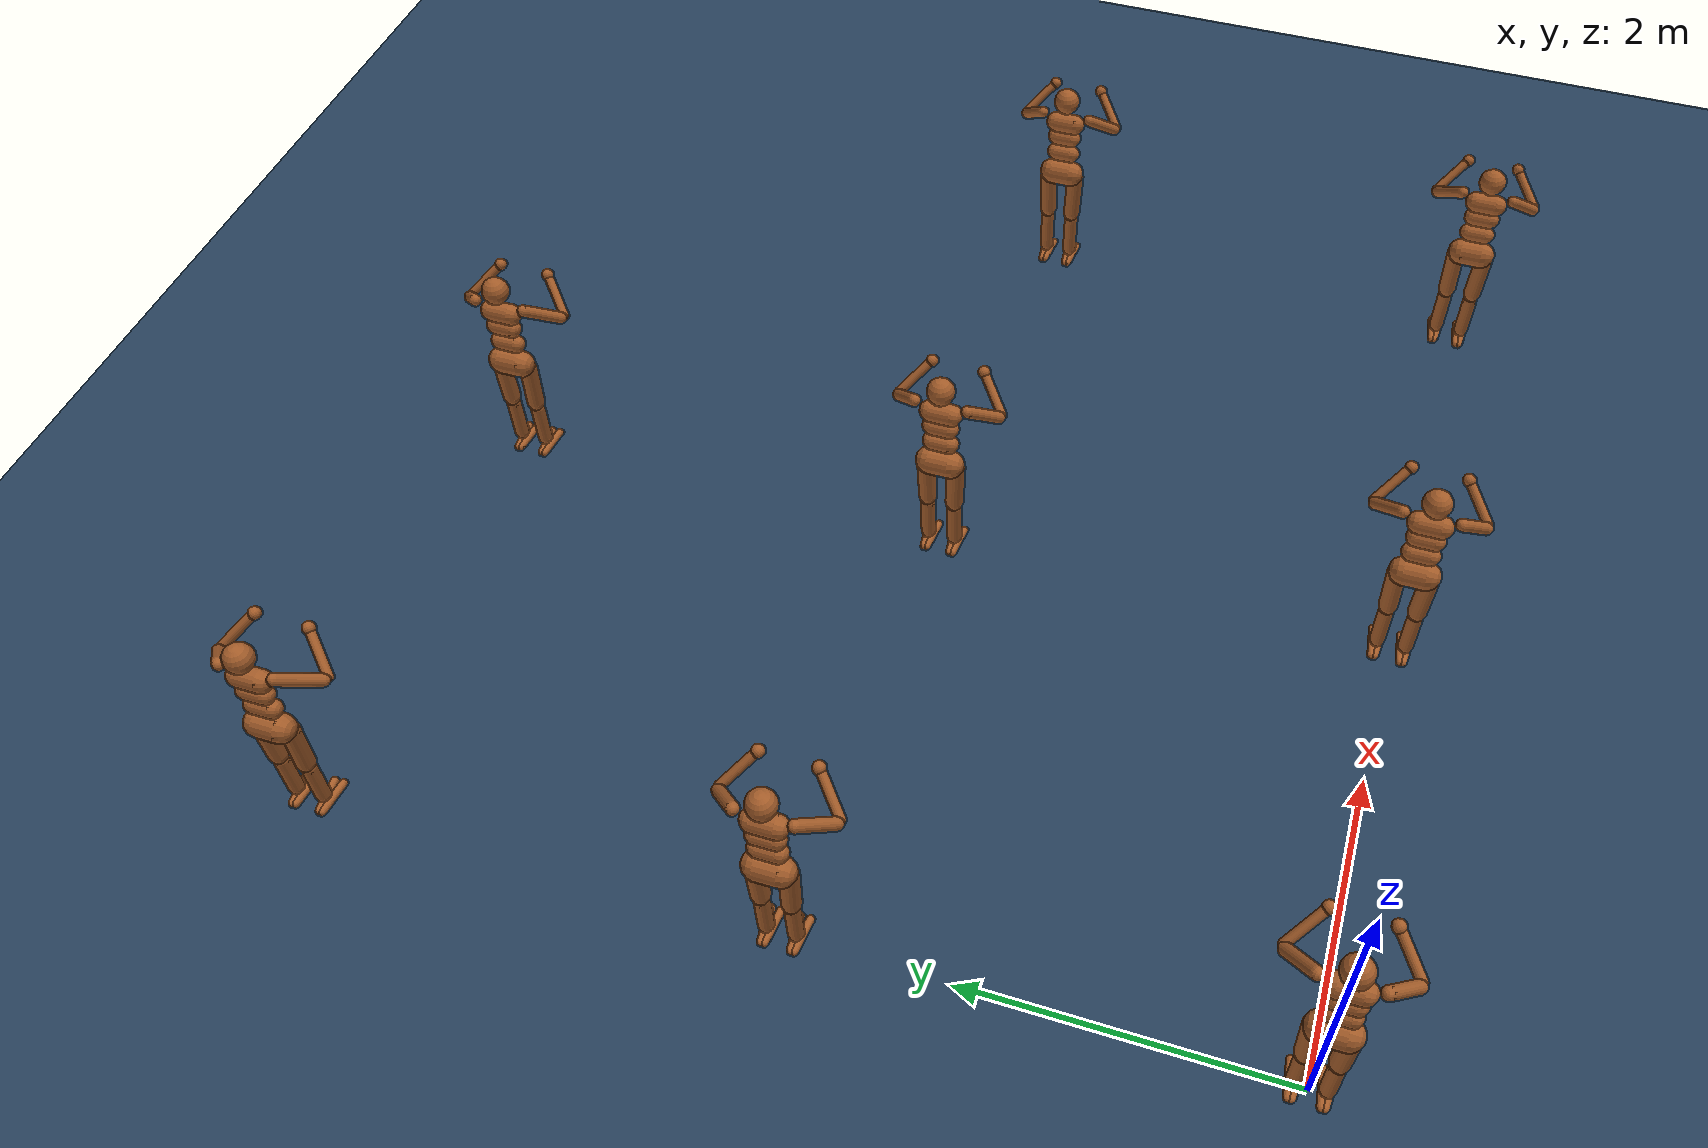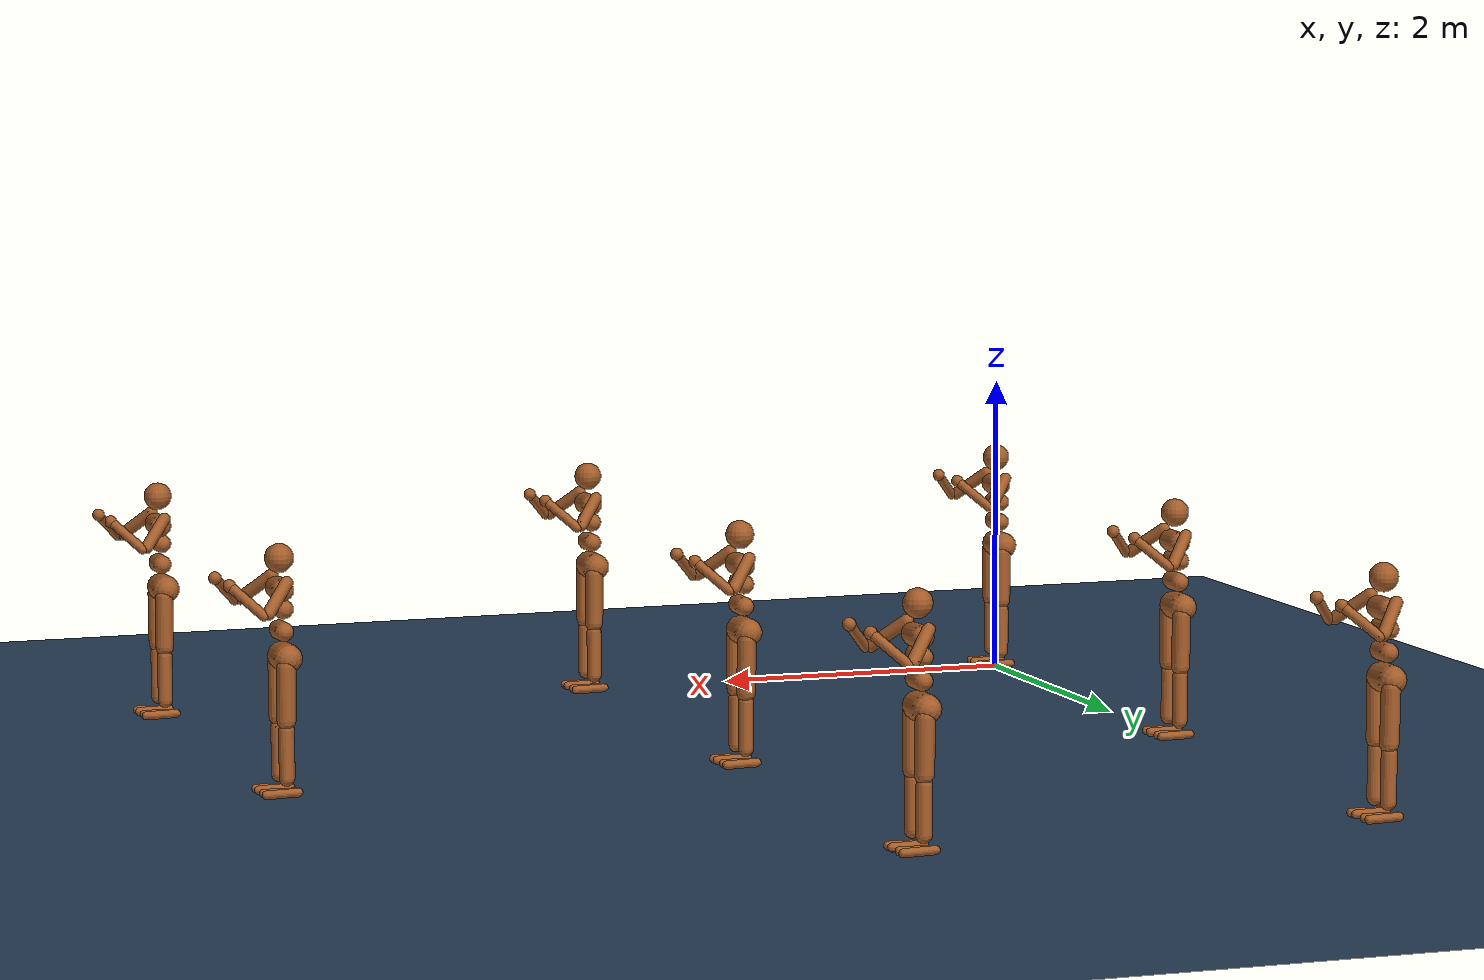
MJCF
<mujoco model="Humanoid">
  <option timestep="0.005" />

  <visual>
    <map force="0.1" zfar="30" />
    <rgba haze="0.15 0.25 0.35 1" />
    <global offwidth="2560" offheight="1440" elevation="-20" azimuth="120" />
  </visual>

  <statistic center="0 0 0.7" />

  <asset>
    <texture type="skybox" builtin="gradient" rgb1=".3 .5 .7" rgb2="0 0 0" width="32" height="512" />
    <texture name="body" type="cube" builtin="flat" mark="cross" width="128" height="128" rgb1="0.8 0.6 0.4" rgb2="0.8 0.6 0.4" markrgb="1 1 1" />
    <material name="body" texture="body" texuniform="true" rgba="0.8 0.6 .4 1" />
    <texture name="grid" type="2d" builtin="checker" width="512" height="512" rgb1=".1 .2 .3" rgb2=".2 .3 .4" />
    <material name="grid" texture="grid" texrepeat="1 1" texuniform="true" reflectance=".2" />
  </asset>

  <default>
    <motor ctrlrange="-1 1" ctrllimited="true" />
    <default class="body">

      <geom type="capsule" condim="1" friction=".7" solimp=".9 .99 .003" solref=".015 1" material="body" group="1" />
      <default class="thigh">
        <geom size=".06" />
      </default>
      <default class="shin">
        <geom fromto="0 0 0 0 0 -.3" size=".049" />
      </default>
      <default class="foot">
        <geom size=".027" />
        <default class="foot1">
          <geom fromto="-.07 -.01 0 .14 -.03 0" />
        </default>
        <default class="foot2">
          <geom fromto="-.07 .01 0 .14  .03 0" />
        </default>
      </default>
      <default class="arm_upper">
        <geom size=".04" />
      </default>
      <default class="arm_lower">
        <geom size=".031" />
      </default>
      <default class="hand">
        <geom type="sphere" size=".04" />
      </default>

      <joint type="hinge" damping=".2" stiffness="1" armature=".01" limited="true" solimplimit="0 .99 .01" />
      <default class="joint_big">
        <joint damping="5" stiffness="10" />
        <default class="hip_x">
          <joint range="-30 10" />
        </default>
        <default class="hip_z">
          <joint range="-60 35" />
        </default>
        <default class="hip_y">
          <joint axis="0 1 0" range="-150 20" />
        </default>
        <default class="joint_big_stiff">
          <joint stiffness="20" />
        </default>
      </default>
      <default class="knee">
        <joint pos="0 0 .02" axis="0 -1 0" range="-160 2" />
      </default>
      <default class="ankle">
        <joint range="-50 50" />
        <default class="ankle_y">
          <joint pos="0 0 .08" axis="0 1 0" stiffness="6" />
        </default>
        <default class="ankle_x">
          <joint pos="0 0 .04" stiffness="3" />
        </default>
      </default>
      <default class="shoulder">
        <joint range="-85 60" />
      </default>
      <default class="elbow">
        <joint range="-100 50" stiffness="0" />
      </default>
    </default>
  </default>

  <worldbody>
    <geom name="floor" size="0 0 .05" type="plane" material="grid" condim="3" />
    <light name="spotlight" mode="targetbodycom" target="torso_0" diffuse=".8 .8 .8" specular="0.3 0.3 0.3" pos="0 -6 4" cutoff="30" />
    <light name="top" pos="0 0 2" mode="trackcom" />
    <body name="torso_0" pos="0.0 0.0 1.282" childclass="body">
      <camera name="back_0" pos="-3 0 1" xyaxes="0 -1 0 1 0 2" mode="trackcom" />
      <camera name="side_0" pos="0 -3 1" xyaxes="1 0 0 0 1 2" mode="trackcom" />
      <freejoint name="root_0" />
      <geom name="torso_0" fromto="0 -.07 0 0 .07 0" size=".07" />
      <geom name="waist_upper_0" fromto="-.01 -.06 -.12 -.01 .06 -.12" size=".06" />
      <body name="head_0" pos="0 0 .19">
        <geom name="head_0" type="sphere" size=".09" />
        <camera name="egocentric_0" pos=".09 0 0" xyaxes="0 -1 0 .1 0 1" fovy="80" />
      </body>
      <body name="waist_lower_0" pos="-.01 0 -.26">
        <geom name="waist_lower_0" fromto="0 -.06 0 0 .06 0" size=".06" />
        <joint name="abdomen_z_0" pos="0 0 .065" axis="0 0 1" range="-45 45" class="joint_big_stiff" />
        <joint name="abdomen_y_0" pos="0 0 .065" axis="0 1 0" range="-75 30" class="joint_big" />
        <body name="pelvis_0" pos="0 0 -.165">
          <joint name="abdomen_x_0" pos="0 0 .1" axis="1 0 0" range="-35 35" class="joint_big" />
          <geom name="butt_0" fromto="-.02 -.07 0 -.02 .07 0" size=".09" />
          <body name="thigh_right_0" pos="0 -.1 -.04">
            <joint name="hip_x_right_0" axis="1 0 0" class="hip_x" />
            <joint name="hip_z_right_0" axis="0 0 1" class="hip_z" />
            <joint name="hip_y_right_0" class="hip_y" />
            <geom name="thigh_right_0" fromto="0 0 0 0 .01 -.34" class="thigh" />
            <body name="shin_right_0" pos="0 .01 -.4">
              <joint name="knee_right_0" class="knee" />
              <geom name="shin_right_0" class="shin" />
              <body name="foot_right_0" pos="0 0 -.39">
                <joint name="ankle_y_right_0" class="ankle_y" />
                <joint name="ankle_x_right_0" class="ankle_x" axis="1 0 .5" />
                <geom name="foot1_right_0" class="foot1" />
                <geom name="foot2_right_0" class="foot2" />
              </body>
            </body>
          </body>
          <body name="thigh_left_0" pos="0 .1 -.04">
            <joint name="hip_x_left_0" axis="-1 0 0" class="hip_x" />
            <joint name="hip_z_left_0" axis="0 0 -1" class="hip_z" />
            <joint name="hip_y_left_0" class="hip_y" />
            <geom name="thigh_left_0" fromto="0 0 0 0 -.01 -.34" class="thigh" />
            <body name="shin_left_0" pos="0 -.01 -.4">
              <joint name="knee_left_0" class="knee" />
              <geom name="shin_left_0" fromto="0 0 0 0 0 -.3" class="shin" />
              <body name="foot_left_0" pos="0 0 -.39">
                <joint name="ankle_y_left_0" class="ankle_y" />
                <joint name="ankle_x_left_0" class="ankle_x" axis="-1 0 -.5" />
                <geom name="foot1_left_0" class="foot1" />
                <geom name="foot2_left_0" class="foot2" />
              </body>
            </body>
          </body>
        </body>
      </body>
      <body name="upper_arm_right_0" pos="0 -.17 .06">
        <joint name="shoulder1_right_0" axis="2 1 1" class="shoulder" />
        <joint name="shoulder2_right_0" axis="0 -1 1" class="shoulder" />
        <geom name="upper_arm_right_0" fromto="0 0 0 .16 -.16 -.16" class="arm_upper" />
        <body name="lower_arm_right_0" pos=".18 -.18 -.18">
          <joint name="elbow_right_0" axis="0 -1 1" class="elbow" />
          <geom name="lower_arm_right_0" fromto=".01 .01 .01 .17 .17 .17" class="arm_lower" />
          <body name="hand_right_0" pos=".18 .18 .18">
            <geom name="hand_right_0" zaxis="1 1 1" class="hand" />
          </body>
        </body>
      </body>
      <body name="upper_arm_left_0" pos="0 .17 .06">
        <joint name="shoulder1_left_0" axis="-2 1 -1" class="shoulder" />
        <joint name="shoulder2_left_0" axis="0 -1 -1" class="shoulder" />
        <geom name="upper_arm_left_0" fromto="0 0 0 .16 .16 -.16" class="arm_upper" />
        <body name="lower_arm_left_0" pos=".18 .18 -.18">
          <joint name="elbow_left_0" axis="0 -1 -1" class="elbow" />
          <geom name="lower_arm_left_0" fromto=".01 -.01 .01 .17 -.17 .17" class="arm_lower" />
          <body name="hand_left_0" pos=".18 -.18 .18">
            <geom name="hand_left_0" zaxis="1 -1 1" class="hand" />
          </body>
        </body>
      </body>
    </body>
  <body name="torso_1" pos="3.0 0.0 1.282" childclass="body">
      <camera name="back_1" pos="-3 0 1" xyaxes="0 -1 0 1 0 2" mode="trackcom" />
      <camera name="side_1" pos="0 -3 1" xyaxes="1 0 0 0 1 2" mode="trackcom" />
      <freejoint name="root_1" />
      <geom name="torso_1" fromto="0 -.07 0 0 .07 0" size=".07" />
      <geom name="waist_upper_1" fromto="-.01 -.06 -.12 -.01 .06 -.12" size=".06" />
      <body name="head_1" pos="0 0 .19">
        <geom name="head_1" type="sphere" size=".09" />
        <camera name="egocentric_1" pos=".09 0 0" xyaxes="0 -1 0 .1 0 1" fovy="80" />
      </body>
      <body name="waist_lower_1" pos="-.01 0 -.26">
        <geom name="waist_lower_1" fromto="0 -.06 0 0 .06 0" size=".06" />
        <joint name="abdomen_z_1" pos="0 0 .065" axis="0 0 1" range="-45 45" class="joint_big_stiff" />
        <joint name="abdomen_y_1" pos="0 0 .065" axis="0 1 0" range="-75 30" class="joint_big" />
        <body name="pelvis_1" pos="0 0 -.165">
          <joint name="abdomen_x_1" pos="0 0 .1" axis="1 0 0" range="-35 35" class="joint_big" />
          <geom name="butt_1" fromto="-.02 -.07 0 -.02 .07 0" size=".09" />
          <body name="thigh_right_1" pos="0 -.1 -.04">
            <joint name="hip_x_right_1" axis="1 0 0" class="hip_x" />
            <joint name="hip_z_right_1" axis="0 0 1" class="hip_z" />
            <joint name="hip_y_right_1" class="hip_y" />
            <geom name="thigh_right_1" fromto="0 0 0 0 .01 -.34" class="thigh" />
            <body name="shin_right_1" pos="0 .01 -.4">
              <joint name="knee_right_1" class="knee" />
              <geom name="shin_right_1" class="shin" />
              <body name="foot_right_1" pos="0 0 -.39">
                <joint name="ankle_y_right_1" class="ankle_y" />
                <joint name="ankle_x_right_1" class="ankle_x" axis="1 0 .5" />
                <geom name="foot1_right_1" class="foot1" />
                <geom name="foot2_right_1" class="foot2" />
              </body>
            </body>
          </body>
          <body name="thigh_left_1" pos="0 .1 -.04">
            <joint name="hip_x_left_1" axis="-1 0 0" class="hip_x" />
            <joint name="hip_z_left_1" axis="0 0 -1" class="hip_z" />
            <joint name="hip_y_left_1" class="hip_y" />
            <geom name="thigh_left_1" fromto="0 0 0 0 -.01 -.34" class="thigh" />
            <body name="shin_left_1" pos="0 -.01 -.4">
              <joint name="knee_left_1" class="knee" />
              <geom name="shin_left_1" fromto="0 0 0 0 0 -.3" class="shin" />
              <body name="foot_left_1" pos="0 0 -.39">
                <joint name="ankle_y_left_1" class="ankle_y" />
                <joint name="ankle_x_left_1" class="ankle_x" axis="-1 0 -.5" />
                <geom name="foot1_left_1" class="foot1" />
                <geom name="foot2_left_1" class="foot2" />
              </body>
            </body>
          </body>
        </body>
      </body>
      <body name="upper_arm_right_1" pos="0 -.17 .06">
        <joint name="shoulder1_right_1" axis="2 1 1" class="shoulder" />
        <joint name="shoulder2_right_1" axis="0 -1 1" class="shoulder" />
        <geom name="upper_arm_right_1" fromto="0 0 0 .16 -.16 -.16" class="arm_upper" />
        <body name="lower_arm_right_1" pos=".18 -.18 -.18">
          <joint name="elbow_right_1" axis="0 -1 1" class="elbow" />
          <geom name="lower_arm_right_1" fromto=".01 .01 .01 .17 .17 .17" class="arm_lower" />
          <body name="hand_right_1" pos=".18 .18 .18">
            <geom name="hand_right_1" zaxis="1 1 1" class="hand" />
          </body>
        </body>
      </body>
      <body name="upper_arm_left_1" pos="0 .17 .06">
        <joint name="shoulder1_left_1" axis="-2 1 -1" class="shoulder" />
        <joint name="shoulder2_left_1" axis="0 -1 -1" class="shoulder" />
        <geom name="upper_arm_left_1" fromto="0 0 0 .16 .16 -.16" class="arm_upper" />
        <body name="lower_arm_left_1" pos=".18 .18 -.18">
          <joint name="elbow_left_1" axis="0 -1 -1" class="elbow" />
          <geom name="lower_arm_left_1" fromto=".01 -.01 .01 .17 -.17 .17" class="arm_lower" />
          <body name="hand_left_1" pos=".18 -.18 .18">
            <geom name="hand_left_1" zaxis="1 -1 1" class="hand" />
          </body>
        </body>
      </body>
    </body>
  <body name="torso_2" pos="6.0 0.0 1.282" childclass="body">
      <camera name="back_2" pos="-3 0 1" xyaxes="0 -1 0 1 0 2" mode="trackcom" />
      <camera name="side_2" pos="0 -3 1" xyaxes="1 0 0 0 1 2" mode="trackcom" />
      <freejoint name="root_2" />
      <geom name="torso_2" fromto="0 -.07 0 0 .07 0" size=".07" />
      <geom name="waist_upper_2" fromto="-.01 -.06 -.12 -.01 .06 -.12" size=".06" />
      <body name="head_2" pos="0 0 .19">
        <geom name="head_2" type="sphere" size=".09" />
        <camera name="egocentric_2" pos=".09 0 0" xyaxes="0 -1 0 .1 0 1" fovy="80" />
      </body>
      <body name="waist_lower_2" pos="-.01 0 -.26">
        <geom name="waist_lower_2" fromto="0 -.06 0 0 .06 0" size=".06" />
        <joint name="abdomen_z_2" pos="0 0 .065" axis="0 0 1" range="-45 45" class="joint_big_stiff" />
        <joint name="abdomen_y_2" pos="0 0 .065" axis="0 1 0" range="-75 30" class="joint_big" />
        <body name="pelvis_2" pos="0 0 -.165">
          <joint name="abdomen_x_2" pos="0 0 .1" axis="1 0 0" range="-35 35" class="joint_big" />
          <geom name="butt_2" fromto="-.02 -.07 0 -.02 .07 0" size=".09" />
          <body name="thigh_right_2" pos="0 -.1 -.04">
            <joint name="hip_x_right_2" axis="1 0 0" class="hip_x" />
            <joint name="hip_z_right_2" axis="0 0 1" class="hip_z" />
            <joint name="hip_y_right_2" class="hip_y" />
            <geom name="thigh_right_2" fromto="0 0 0 0 .01 -.34" class="thigh" />
            <body name="shin_right_2" pos="0 .01 -.4">
              <joint name="knee_right_2" class="knee" />
              <geom name="shin_right_2" class="shin" />
              <body name="foot_right_2" pos="0 0 -.39">
                <joint name="ankle_y_right_2" class="ankle_y" />
                <joint name="ankle_x_right_2" class="ankle_x" axis="1 0 .5" />
                <geom name="foot1_right_2" class="foot1" />
                <geom name="foot2_right_2" class="foot2" />
              </body>
            </body>
          </body>
          <body name="thigh_left_2" pos="0 .1 -.04">
            <joint name="hip_x_left_2" axis="-1 0 0" class="hip_x" />
            <joint name="hip_z_left_2" axis="0 0 -1" class="hip_z" />
            <joint name="hip_y_left_2" class="hip_y" />
            <geom name="thigh_left_2" fromto="0 0 0 0 -.01 -.34" class="thigh" />
            <body name="shin_left_2" pos="0 -.01 -.4">
              <joint name="knee_left_2" class="knee" />
              <geom name="shin_left_2" fromto="0 0 0 0 0 -.3" class="shin" />
              <body name="foot_left_2" pos="0 0 -.39">
                <joint name="ankle_y_left_2" class="ankle_y" />
                <joint name="ankle_x_left_2" class="ankle_x" axis="-1 0 -.5" />
                <geom name="foot1_left_2" class="foot1" />
                <geom name="foot2_left_2" class="foot2" />
              </body>
            </body>
          </body>
        </body>
      </body>
      <body name="upper_arm_right_2" pos="0 -.17 .06">
        <joint name="shoulder1_right_2" axis="2 1 1" class="shoulder" />
        <joint name="shoulder2_right_2" axis="0 -1 1" class="shoulder" />
        <geom name="upper_arm_right_2" fromto="0 0 0 .16 -.16 -.16" class="arm_upper" />
        <body name="lower_arm_right_2" pos=".18 -.18 -.18">
          <joint name="elbow_right_2" axis="0 -1 1" class="elbow" />
          <geom name="lower_arm_right_2" fromto=".01 .01 .01 .17 .17 .17" class="arm_lower" />
          <body name="hand_right_2" pos=".18 .18 .18">
            <geom name="hand_right_2" zaxis="1 1 1" class="hand" />
          </body>
        </body>
      </body>
      <body name="upper_arm_left_2" pos="0 .17 .06">
        <joint name="shoulder1_left_2" axis="-2 1 -1" class="shoulder" />
        <joint name="shoulder2_left_2" axis="0 -1 -1" class="shoulder" />
        <geom name="upper_arm_left_2" fromto="0 0 0 .16 .16 -.16" class="arm_upper" />
        <body name="lower_arm_left_2" pos=".18 .18 -.18">
          <joint name="elbow_left_2" axis="0 -1 -1" class="elbow" />
          <geom name="lower_arm_left_2" fromto=".01 -.01 .01 .17 -.17 .17" class="arm_lower" />
          <body name="hand_left_2" pos=".18 -.18 .18">
            <geom name="hand_left_2" zaxis="1 -1 1" class="hand" />
          </body>
        </body>
      </body>
    </body>
  <body name="torso_3" pos="0.0 3.0 1.282" childclass="body">
      <camera name="back_3" pos="-3 0 1" xyaxes="0 -1 0 1 0 2" mode="trackcom" />
      <camera name="side_3" pos="0 -3 1" xyaxes="1 0 0 0 1 2" mode="trackcom" />
      <freejoint name="root_3" />
      <geom name="torso_3" fromto="0 -.07 0 0 .07 0" size=".07" />
      <geom name="waist_upper_3" fromto="-.01 -.06 -.12 -.01 .06 -.12" size=".06" />
      <body name="head_3" pos="0 0 .19">
        <geom name="head_3" type="sphere" size=".09" />
        <camera name="egocentric_3" pos=".09 0 0" xyaxes="0 -1 0 .1 0 1" fovy="80" />
      </body>
      <body name="waist_lower_3" pos="-.01 0 -.26">
        <geom name="waist_lower_3" fromto="0 -.06 0 0 .06 0" size=".06" />
        <joint name="abdomen_z_3" pos="0 0 .065" axis="0 0 1" range="-45 45" class="joint_big_stiff" />
        <joint name="abdomen_y_3" pos="0 0 .065" axis="0 1 0" range="-75 30" class="joint_big" />
        <body name="pelvis_3" pos="0 0 -.165">
          <joint name="abdomen_x_3" pos="0 0 .1" axis="1 0 0" range="-35 35" class="joint_big" />
          <geom name="butt_3" fromto="-.02 -.07 0 -.02 .07 0" size=".09" />
          <body name="thigh_right_3" pos="0 -.1 -.04">
            <joint name="hip_x_right_3" axis="1 0 0" class="hip_x" />
            <joint name="hip_z_right_3" axis="0 0 1" class="hip_z" />
            <joint name="hip_y_right_3" class="hip_y" />
            <geom name="thigh_right_3" fromto="0 0 0 0 .01 -.34" class="thigh" />
            <body name="shin_right_3" pos="0 .01 -.4">
              <joint name="knee_right_3" class="knee" />
              <geom name="shin_right_3" class="shin" />
              <body name="foot_right_3" pos="0 0 -.39">
                <joint name="ankle_y_right_3" class="ankle_y" />
                <joint name="ankle_x_right_3" class="ankle_x" axis="1 0 .5" />
                <geom name="foot1_right_3" class="foot1" />
                <geom name="foot2_right_3" class="foot2" />
              </body>
            </body>
          </body>
          <body name="thigh_left_3" pos="0 .1 -.04">
            <joint name="hip_x_left_3" axis="-1 0 0" class="hip_x" />
            <joint name="hip_z_left_3" axis="0 0 -1" class="hip_z" />
            <joint name="hip_y_left_3" class="hip_y" />
            <geom name="thigh_left_3" fromto="0 0 0 0 -.01 -.34" class="thigh" />
            <body name="shin_left_3" pos="0 -.01 -.4">
              <joint name="knee_left_3" class="knee" />
              <geom name="shin_left_3" fromto="0 0 0 0 0 -.3" class="shin" />
              <body name="foot_left_3" pos="0 0 -.39">
                <joint name="ankle_y_left_3" class="ankle_y" />
                <joint name="ankle_x_left_3" class="ankle_x" axis="-1 0 -.5" />
                <geom name="foot1_left_3" class="foot1" />
                <geom name="foot2_left_3" class="foot2" />
              </body>
            </body>
          </body>
        </body>
      </body>
      <body name="upper_arm_right_3" pos="0 -.17 .06">
        <joint name="shoulder1_right_3" axis="2 1 1" class="shoulder" />
        <joint name="shoulder2_right_3" axis="0 -1 1" class="shoulder" />
        <geom name="upper_arm_right_3" fromto="0 0 0 .16 -.16 -.16" class="arm_upper" />
        <body name="lower_arm_right_3" pos=".18 -.18 -.18">
          <joint name="elbow_right_3" axis="0 -1 1" class="elbow" />
          <geom name="lower_arm_right_3" fromto=".01 .01 .01 .17 .17 .17" class="arm_lower" />
          <body name="hand_right_3" pos=".18 .18 .18">
            <geom name="hand_right_3" zaxis="1 1 1" class="hand" />
          </body>
        </body>
      </body>
      <body name="upper_arm_left_3" pos="0 .17 .06">
        <joint name="shoulder1_left_3" axis="-2 1 -1" class="shoulder" />
        <joint name="shoulder2_left_3" axis="0 -1 -1" class="shoulder" />
        <geom name="upper_arm_left_3" fromto="0 0 0 .16 .16 -.16" class="arm_upper" />
        <body name="lower_arm_left_3" pos=".18 .18 -.18">
          <joint name="elbow_left_3" axis="0 -1 -1" class="elbow" />
          <geom name="lower_arm_left_3" fromto=".01 -.01 .01 .17 -.17 .17" class="arm_lower" />
          <body name="hand_left_3" pos=".18 -.18 .18">
            <geom name="hand_left_3" zaxis="1 -1 1" class="hand" />
          </body>
        </body>
      </body>
    </body>
  <body name="torso_4" pos="3.0 3.0 1.282" childclass="body">
      <camera name="back_4" pos="-3 0 1" xyaxes="0 -1 0 1 0 2" mode="trackcom" />
      <camera name="side_4" pos="0 -3 1" xyaxes="1 0 0 0 1 2" mode="trackcom" />
      <freejoint name="root_4" />
      <geom name="torso_4" fromto="0 -.07 0 0 .07 0" size=".07" />
      <geom name="waist_upper_4" fromto="-.01 -.06 -.12 -.01 .06 -.12" size=".06" />
      <body name="head_4" pos="0 0 .19">
        <geom name="head_4" type="sphere" size=".09" />
        <camera name="egocentric_4" pos=".09 0 0" xyaxes="0 -1 0 .1 0 1" fovy="80" />
      </body>
      <body name="waist_lower_4" pos="-.01 0 -.26">
        <geom name="waist_lower_4" fromto="0 -.06 0 0 .06 0" size=".06" />
        <joint name="abdomen_z_4" pos="0 0 .065" axis="0 0 1" range="-45 45" class="joint_big_stiff" />
        <joint name="abdomen_y_4" pos="0 0 .065" axis="0 1 0" range="-75 30" class="joint_big" />
        <body name="pelvis_4" pos="0 0 -.165">
          <joint name="abdomen_x_4" pos="0 0 .1" axis="1 0 0" range="-35 35" class="joint_big" />
          <geom name="butt_4" fromto="-.02 -.07 0 -.02 .07 0" size=".09" />
          <body name="thigh_right_4" pos="0 -.1 -.04">
            <joint name="hip_x_right_4" axis="1 0 0" class="hip_x" />
            <joint name="hip_z_right_4" axis="0 0 1" class="hip_z" />
            <joint name="hip_y_right_4" class="hip_y" />
            <geom name="thigh_right_4" fromto="0 0 0 0 .01 -.34" class="thigh" />
            <body name="shin_right_4" pos="0 .01 -.4">
              <joint name="knee_right_4" class="knee" />
              <geom name="shin_right_4" class="shin" />
              <body name="foot_right_4" pos="0 0 -.39">
                <joint name="ankle_y_right_4" class="ankle_y" />
                <joint name="ankle_x_right_4" class="ankle_x" axis="1 0 .5" />
                <geom name="foot1_right_4" class="foot1" />
                <geom name="foot2_right_4" class="foot2" />
              </body>
            </body>
          </body>
          <body name="thigh_left_4" pos="0 .1 -.04">
            <joint name="hip_x_left_4" axis="-1 0 0" class="hip_x" />
            <joint name="hip_z_left_4" axis="0 0 -1" class="hip_z" />
            <joint name="hip_y_left_4" class="hip_y" />
            <geom name="thigh_left_4" fromto="0 0 0 0 -.01 -.34" class="thigh" />
            <body name="shin_left_4" pos="0 -.01 -.4">
              <joint name="knee_left_4" class="knee" />
              <geom name="shin_left_4" fromto="0 0 0 0 0 -.3" class="shin" />
              <body name="foot_left_4" pos="0 0 -.39">
                <joint name="ankle_y_left_4" class="ankle_y" />
                <joint name="ankle_x_left_4" class="ankle_x" axis="-1 0 -.5" />
                <geom name="foot1_left_4" class="foot1" />
                <geom name="foot2_left_4" class="foot2" />
              </body>
            </body>
          </body>
        </body>
      </body>
      <body name="upper_arm_right_4" pos="0 -.17 .06">
        <joint name="shoulder1_right_4" axis="2 1 1" class="shoulder" />
        <joint name="shoulder2_right_4" axis="0 -1 1" class="shoulder" />
        <geom name="upper_arm_right_4" fromto="0 0 0 .16 -.16 -.16" class="arm_upper" />
        <body name="lower_arm_right_4" pos=".18 -.18 -.18">
          <joint name="elbow_right_4" axis="0 -1 1" class="elbow" />
          <geom name="lower_arm_right_4" fromto=".01 .01 .01 .17 .17 .17" class="arm_lower" />
          <body name="hand_right_4" pos=".18 .18 .18">
            <geom name="hand_right_4" zaxis="1 1 1" class="hand" />
          </body>
        </body>
      </body>
      <body name="upper_arm_left_4" pos="0 .17 .06">
        <joint name="shoulder1_left_4" axis="-2 1 -1" class="shoulder" />
        <joint name="shoulder2_left_4" axis="0 -1 -1" class="shoulder" />
        <geom name="upper_arm_left_4" fromto="0 0 0 .16 .16 -.16" class="arm_upper" />
        <body name="lower_arm_left_4" pos=".18 .18 -.18">
          <joint name="elbow_left_4" axis="0 -1 -1" class="elbow" />
          <geom name="lower_arm_left_4" fromto=".01 -.01 .01 .17 -.17 .17" class="arm_lower" />
          <body name="hand_left_4" pos=".18 -.18 .18">
            <geom name="hand_left_4" zaxis="1 -1 1" class="hand" />
          </body>
        </body>
      </body>
    </body>
  <body name="torso_5" pos="6.0 3.0 1.282" childclass="body">
      <camera name="back_5" pos="-3 0 1" xyaxes="0 -1 0 1 0 2" mode="trackcom" />
      <camera name="side_5" pos="0 -3 1" xyaxes="1 0 0 0 1 2" mode="trackcom" />
      <freejoint name="root_5" />
      <geom name="torso_5" fromto="0 -.07 0 0 .07 0" size=".07" />
      <geom name="waist_upper_5" fromto="-.01 -.06 -.12 -.01 .06 -.12" size=".06" />
      <body name="head_5" pos="0 0 .19">
        <geom name="head_5" type="sphere" size=".09" />
        <camera name="egocentric_5" pos=".09 0 0" xyaxes="0 -1 0 .1 0 1" fovy="80" />
      </body>
      <body name="waist_lower_5" pos="-.01 0 -.26">
        <geom name="waist_lower_5" fromto="0 -.06 0 0 .06 0" size=".06" />
        <joint name="abdomen_z_5" pos="0 0 .065" axis="0 0 1" range="-45 45" class="joint_big_stiff" />
        <joint name="abdomen_y_5" pos="0 0 .065" axis="0 1 0" range="-75 30" class="joint_big" />
        <body name="pelvis_5" pos="0 0 -.165">
          <joint name="abdomen_x_5" pos="0 0 .1" axis="1 0 0" range="-35 35" class="joint_big" />
          <geom name="butt_5" fromto="-.02 -.07 0 -.02 .07 0" size=".09" />
          <body name="thigh_right_5" pos="0 -.1 -.04">
            <joint name="hip_x_right_5" axis="1 0 0" class="hip_x" />
            <joint name="hip_z_right_5" axis="0 0 1" class="hip_z" />
            <joint name="hip_y_right_5" class="hip_y" />
            <geom name="thigh_right_5" fromto="0 0 0 0 .01 -.34" class="thigh" />
            <body name="shin_right_5" pos="0 .01 -.4">
              <joint name="knee_right_5" class="knee" />
              <geom name="shin_right_5" class="shin" />
              <body name="foot_right_5" pos="0 0 -.39">
                <joint name="ankle_y_right_5" class="ankle_y" />
                <joint name="ankle_x_right_5" class="ankle_x" axis="1 0 .5" />
                <geom name="foot1_right_5" class="foot1" />
                <geom name="foot2_right_5" class="foot2" />
              </body>
            </body>
          </body>
          <body name="thigh_left_5" pos="0 .1 -.04">
            <joint name="hip_x_left_5" axis="-1 0 0" class="hip_x" />
            <joint name="hip_z_left_5" axis="0 0 -1" class="hip_z" />
            <joint name="hip_y_left_5" class="hip_y" />
            <geom name="thigh_left_5" fromto="0 0 0 0 -.01 -.34" class="thigh" />
            <body name="shin_left_5" pos="0 -.01 -.4">
              <joint name="knee_left_5" class="knee" />
              <geom name="shin_left_5" fromto="0 0 0 0 0 -.3" class="shin" />
              <body name="foot_left_5" pos="0 0 -.39">
                <joint name="ankle_y_left_5" class="ankle_y" />
                <joint name="ankle_x_left_5" class="ankle_x" axis="-1 0 -.5" />
                <geom name="foot1_left_5" class="foot1" />
                <geom name="foot2_left_5" class="foot2" />
              </body>
            </body>
          </body>
        </body>
      </body>
      <body name="upper_arm_right_5" pos="0 -.17 .06">
        <joint name="shoulder1_right_5" axis="2 1 1" class="shoulder" />
        <joint name="shoulder2_right_5" axis="0 -1 1" class="shoulder" />
        <geom name="upper_arm_right_5" fromto="0 0 0 .16 -.16 -.16" class="arm_upper" />
        <body name="lower_arm_right_5" pos=".18 -.18 -.18">
          <joint name="elbow_right_5" axis="0 -1 1" class="elbow" />
          <geom name="lower_arm_right_5" fromto=".01 .01 .01 .17 .17 .17" class="arm_lower" />
          <body name="hand_right_5" pos=".18 .18 .18">
            <geom name="hand_right_5" zaxis="1 1 1" class="hand" />
          </body>
        </body>
      </body>
      <body name="upper_arm_left_5" pos="0 .17 .06">
        <joint name="shoulder1_left_5" axis="-2 1 -1" class="shoulder" />
        <joint name="shoulder2_left_5" axis="0 -1 -1" class="shoulder" />
        <geom name="upper_arm_left_5" fromto="0 0 0 .16 .16 -.16" class="arm_upper" />
        <body name="lower_arm_left_5" pos=".18 .18 -.18">
          <joint name="elbow_left_5" axis="0 -1 -1" class="elbow" />
          <geom name="lower_arm_left_5" fromto=".01 -.01 .01 .17 -.17 .17" class="arm_lower" />
          <body name="hand_left_5" pos=".18 -.18 .18">
            <geom name="hand_left_5" zaxis="1 -1 1" class="hand" />
          </body>
        </body>
      </body>
    </body>
  <body name="torso_6" pos="0.0 6.0 1.282" childclass="body">
      <camera name="back_6" pos="-3 0 1" xyaxes="0 -1 0 1 0 2" mode="trackcom" />
      <camera name="side_6" pos="0 -3 1" xyaxes="1 0 0 0 1 2" mode="trackcom" />
      <freejoint name="root_6" />
      <geom name="torso_6" fromto="0 -.07 0 0 .07 0" size=".07" />
      <geom name="waist_upper_6" fromto="-.01 -.06 -.12 -.01 .06 -.12" size=".06" />
      <body name="head_6" pos="0 0 .19">
        <geom name="head_6" type="sphere" size=".09" />
        <camera name="egocentric_6" pos=".09 0 0" xyaxes="0 -1 0 .1 0 1" fovy="80" />
      </body>
      <body name="waist_lower_6" pos="-.01 0 -.26">
        <geom name="waist_lower_6" fromto="0 -.06 0 0 .06 0" size=".06" />
        <joint name="abdomen_z_6" pos="0 0 .065" axis="0 0 1" range="-45 45" class="joint_big_stiff" />
        <joint name="abdomen_y_6" pos="0 0 .065" axis="0 1 0" range="-75 30" class="joint_big" />
        <body name="pelvis_6" pos="0 0 -.165">
          <joint name="abdomen_x_6" pos="0 0 .1" axis="1 0 0" range="-35 35" class="joint_big" />
          <geom name="butt_6" fromto="-.02 -.07 0 -.02 .07 0" size=".09" />
          <body name="thigh_right_6" pos="0 -.1 -.04">
            <joint name="hip_x_right_6" axis="1 0 0" class="hip_x" />
            <joint name="hip_z_right_6" axis="0 0 1" class="hip_z" />
            <joint name="hip_y_right_6" class="hip_y" />
            <geom name="thigh_right_6" fromto="0 0 0 0 .01 -.34" class="thigh" />
            <body name="shin_right_6" pos="0 .01 -.4">
              <joint name="knee_right_6" class="knee" />
              <geom name="shin_right_6" class="shin" />
              <body name="foot_right_6" pos="0 0 -.39">
                <joint name="ankle_y_right_6" class="ankle_y" />
                <joint name="ankle_x_right_6" class="ankle_x" axis="1 0 .5" />
                <geom name="foot1_right_6" class="foot1" />
                <geom name="foot2_right_6" class="foot2" />
              </body>
            </body>
          </body>
          <body name="thigh_left_6" pos="0 .1 -.04">
            <joint name="hip_x_left_6" axis="-1 0 0" class="hip_x" />
            <joint name="hip_z_left_6" axis="0 0 -1" class="hip_z" />
            <joint name="hip_y_left_6" class="hip_y" />
            <geom name="thigh_left_6" fromto="0 0 0 0 -.01 -.34" class="thigh" />
            <body name="shin_left_6" pos="0 -.01 -.4">
              <joint name="knee_left_6" class="knee" />
              <geom name="shin_left_6" fromto="0 0 0 0 0 -.3" class="shin" />
              <body name="foot_left_6" pos="0 0 -.39">
                <joint name="ankle_y_left_6" class="ankle_y" />
                <joint name="ankle_x_left_6" class="ankle_x" axis="-1 0 -.5" />
                <geom name="foot1_left_6" class="foot1" />
                <geom name="foot2_left_6" class="foot2" />
              </body>
            </body>
          </body>
        </body>
      </body>
      <body name="upper_arm_right_6" pos="0 -.17 .06">
        <joint name="shoulder1_right_6" axis="2 1 1" class="shoulder" />
        <joint name="shoulder2_right_6" axis="0 -1 1" class="shoulder" />
        <geom name="upper_arm_right_6" fromto="0 0 0 .16 -.16 -.16" class="arm_upper" />
        <body name="lower_arm_right_6" pos=".18 -.18 -.18">
          <joint name="elbow_right_6" axis="0 -1 1" class="elbow" />
          <geom name="lower_arm_right_6" fromto=".01 .01 .01 .17 .17 .17" class="arm_lower" />
          <body name="hand_right_6" pos=".18 .18 .18">
            <geom name="hand_right_6" zaxis="1 1 1" class="hand" />
          </body>
        </body>
      </body>
      <body name="upper_arm_left_6" pos="0 .17 .06">
        <joint name="shoulder1_left_6" axis="-2 1 -1" class="shoulder" />
        <joint name="shoulder2_left_6" axis="0 -1 -1" class="shoulder" />
        <geom name="upper_arm_left_6" fromto="0 0 0 .16 .16 -.16" class="arm_upper" />
        <body name="lower_arm_left_6" pos=".18 .18 -.18">
          <joint name="elbow_left_6" axis="0 -1 -1" class="elbow" />
          <geom name="lower_arm_left_6" fromto=".01 -.01 .01 .17 -.17 .17" class="arm_lower" />
          <body name="hand_left_6" pos=".18 -.18 .18">
            <geom name="hand_left_6" zaxis="1 -1 1" class="hand" />
          </body>
        </body>
      </body>
    </body>
  <body name="torso_7" pos="3.0 6.0 1.282" childclass="body">
      <camera name="back_7" pos="-3 0 1" xyaxes="0 -1 0 1 0 2" mode="trackcom" />
      <camera name="side_7" pos="0 -3 1" xyaxes="1 0 0 0 1 2" mode="trackcom" />
      <freejoint name="root_7" />
      <geom name="torso_7" fromto="0 -.07 0 0 .07 0" size=".07" />
      <geom name="waist_upper_7" fromto="-.01 -.06 -.12 -.01 .06 -.12" size=".06" />
      <body name="head_7" pos="0 0 .19">
        <geom name="head_7" type="sphere" size=".09" />
        <camera name="egocentric_7" pos=".09 0 0" xyaxes="0 -1 0 .1 0 1" fovy="80" />
      </body>
      <body name="waist_lower_7" pos="-.01 0 -.26">
        <geom name="waist_lower_7" fromto="0 -.06 0 0 .06 0" size=".06" />
        <joint name="abdomen_z_7" pos="0 0 .065" axis="0 0 1" range="-45 45" class="joint_big_stiff" />
        <joint name="abdomen_y_7" pos="0 0 .065" axis="0 1 0" range="-75 30" class="joint_big" />
        <body name="pelvis_7" pos="0 0 -.165">
          <joint name="abdomen_x_7" pos="0 0 .1" axis="1 0 0" range="-35 35" class="joint_big" />
          <geom name="butt_7" fromto="-.02 -.07 0 -.02 .07 0" size=".09" />
          <body name="thigh_right_7" pos="0 -.1 -.04">
            <joint name="hip_x_right_7" axis="1 0 0" class="hip_x" />
            <joint name="hip_z_right_7" axis="0 0 1" class="hip_z" />
            <joint name="hip_y_right_7" class="hip_y" />
            <geom name="thigh_right_7" fromto="0 0 0 0 .01 -.34" class="thigh" />
            <body name="shin_right_7" pos="0 .01 -.4">
              <joint name="knee_right_7" class="knee" />
              <geom name="shin_right_7" class="shin" />
              <body name="foot_right_7" pos="0 0 -.39">
                <joint name="ankle_y_right_7" class="ankle_y" />
                <joint name="ankle_x_right_7" class="ankle_x" axis="1 0 .5" />
                <geom name="foot1_right_7" class="foot1" />
                <geom name="foot2_right_7" class="foot2" />
              </body>
            </body>
          </body>
          <body name="thigh_left_7" pos="0 .1 -.04">
            <joint name="hip_x_left_7" axis="-1 0 0" class="hip_x" />
            <joint name="hip_z_left_7" axis="0 0 -1" class="hip_z" />
            <joint name="hip_y_left_7" class="hip_y" />
            <geom name="thigh_left_7" fromto="0 0 0 0 -.01 -.34" class="thigh" />
            <body name="shin_left_7" pos="0 -.01 -.4">
              <joint name="knee_left_7" class="knee" />
              <geom name="shin_left_7" fromto="0 0 0 0 0 -.3" class="shin" />
              <body name="foot_left_7" pos="0 0 -.39">
                <joint name="ankle_y_left_7" class="ankle_y" />
                <joint name="ankle_x_left_7" class="ankle_x" axis="-1 0 -.5" />
                <geom name="foot1_left_7" class="foot1" />
                <geom name="foot2_left_7" class="foot2" />
              </body>
            </body>
          </body>
        </body>
      </body>
      <body name="upper_arm_right_7" pos="0 -.17 .06">
        <joint name="shoulder1_right_7" axis="2 1 1" class="shoulder" />
        <joint name="shoulder2_right_7" axis="0 -1 1" class="shoulder" />
        <geom name="upper_arm_right_7" fromto="0 0 0 .16 -.16 -.16" class="arm_upper" />
        <body name="lower_arm_right_7" pos=".18 -.18 -.18">
          <joint name="elbow_right_7" axis="0 -1 1" class="elbow" />
          <geom name="lower_arm_right_7" fromto=".01 .01 .01 .17 .17 .17" class="arm_lower" />
          <body name="hand_right_7" pos=".18 .18 .18">
            <geom name="hand_right_7" zaxis="1 1 1" class="hand" />
          </body>
        </body>
      </body>
      <body name="upper_arm_left_7" pos="0 .17 .06">
        <joint name="shoulder1_left_7" axis="-2 1 -1" class="shoulder" />
        <joint name="shoulder2_left_7" axis="0 -1 -1" class="shoulder" />
        <geom name="upper_arm_left_7" fromto="0 0 0 .16 .16 -.16" class="arm_upper" />
        <body name="lower_arm_left_7" pos=".18 .18 -.18">
          <joint name="elbow_left_7" axis="0 -1 -1" class="elbow" />
          <geom name="lower_arm_left_7" fromto=".01 -.01 .01 .17 -.17 .17" class="arm_lower" />
          <body name="hand_left_7" pos=".18 -.18 .18">
            <geom name="hand_left_7" zaxis="1 -1 1" class="hand" />
          </body>
        </body>
      </body>
    </body>
  </worldbody>

  <contact>
    <exclude body1="waist_lower_0" body2="thigh_right_0" />
    <exclude body1="waist_lower_0" body2="thigh_left_0" />
  <exclude body1="waist_lower_1" body2="thigh_right_1" />
    <exclude body1="waist_lower_1" body2="thigh_left_1" />
  <exclude body1="waist_lower_2" body2="thigh_right_2" />
    <exclude body1="waist_lower_2" body2="thigh_left_2" />
  <exclude body1="waist_lower_3" body2="thigh_right_3" />
    <exclude body1="waist_lower_3" body2="thigh_left_3" />
  <exclude body1="waist_lower_4" body2="thigh_right_4" />
    <exclude body1="waist_lower_4" body2="thigh_left_4" />
  <exclude body1="waist_lower_5" body2="thigh_right_5" />
    <exclude body1="waist_lower_5" body2="thigh_left_5" />
  <exclude body1="waist_lower_6" body2="thigh_right_6" />
    <exclude body1="waist_lower_6" body2="thigh_left_6" />
  <exclude body1="waist_lower_7" body2="thigh_right_7" />
    <exclude body1="waist_lower_7" body2="thigh_left_7" />
  </contact>

  <tendon>
    <fixed name="hamstring_right_0" limited="true" range="-0.3 2">
      <joint joint="hip_y_right_0" coef=".5" />
      <joint joint="knee_right_0" coef="-.5" />
    </fixed>
    <fixed name="hamstring_left_0" limited="true" range="-0.3 2">
      <joint joint="hip_y_left_0" coef=".5" />
      <joint joint="knee_left_0" coef="-.5" />
    </fixed>
  <fixed name="hamstring_right_1" limited="true" range="-0.3 2">
      <joint joint="hip_y_right_1" coef=".5" />
      <joint joint="knee_right_1" coef="-.5" />
    </fixed>
    <fixed name="hamstring_left_1" limited="true" range="-0.3 2">
      <joint joint="hip_y_left_1" coef=".5" />
      <joint joint="knee_left_1" coef="-.5" />
    </fixed>
  <fixed name="hamstring_right_2" limited="true" range="-0.3 2">
      <joint joint="hip_y_right_2" coef=".5" />
      <joint joint="knee_right_2" coef="-.5" />
    </fixed>
    <fixed name="hamstring_left_2" limited="true" range="-0.3 2">
      <joint joint="hip_y_left_2" coef=".5" />
      <joint joint="knee_left_2" coef="-.5" />
    </fixed>
  <fixed name="hamstring_right_3" limited="true" range="-0.3 2">
      <joint joint="hip_y_right_3" coef=".5" />
      <joint joint="knee_right_3" coef="-.5" />
    </fixed>
    <fixed name="hamstring_left_3" limited="true" range="-0.3 2">
      <joint joint="hip_y_left_3" coef=".5" />
      <joint joint="knee_left_3" coef="-.5" />
    </fixed>
  <fixed name="hamstring_right_4" limited="true" range="-0.3 2">
      <joint joint="hip_y_right_4" coef=".5" />
      <joint joint="knee_right_4" coef="-.5" />
    </fixed>
    <fixed name="hamstring_left_4" limited="true" range="-0.3 2">
      <joint joint="hip_y_left_4" coef=".5" />
      <joint joint="knee_left_4" coef="-.5" />
    </fixed>
  <fixed name="hamstring_right_5" limited="true" range="-0.3 2">
      <joint joint="hip_y_right_5" coef=".5" />
      <joint joint="knee_right_5" coef="-.5" />
    </fixed>
    <fixed name="hamstring_left_5" limited="true" range="-0.3 2">
      <joint joint="hip_y_left_5" coef=".5" />
      <joint joint="knee_left_5" coef="-.5" />
    </fixed>
  <fixed name="hamstring_right_6" limited="true" range="-0.3 2">
      <joint joint="hip_y_right_6" coef=".5" />
      <joint joint="knee_right_6" coef="-.5" />
    </fixed>
    <fixed name="hamstring_left_6" limited="true" range="-0.3 2">
      <joint joint="hip_y_left_6" coef=".5" />
      <joint joint="knee_left_6" coef="-.5" />
    </fixed>
  <fixed name="hamstring_right_7" limited="true" range="-0.3 2">
      <joint joint="hip_y_right_7" coef=".5" />
      <joint joint="knee_right_7" coef="-.5" />
    </fixed>
    <fixed name="hamstring_left_7" limited="true" range="-0.3 2">
      <joint joint="hip_y_left_7" coef=".5" />
      <joint joint="knee_left_7" coef="-.5" />
    </fixed>
  </tendon>

  <actuator>
    <motor name="abdomen_z_0" gear="40" joint="abdomen_z_0" />
    <motor name="abdomen_y_0" gear="40" joint="abdomen_y_0" />
    <motor name="abdomen_x_0" gear="40" joint="abdomen_x_0" />
    <motor name="hip_x_right_0" gear="40" joint="hip_x_right_0" />
    <motor name="hip_z_right_0" gear="40" joint="hip_z_right_0" />
    <motor name="hip_y_right_0" gear="120" joint="hip_y_right_0" />
    <motor name="knee_right_0" gear="80" joint="knee_right_0" />
    <motor name="ankle_y_right_0" gear="20" joint="ankle_y_right_0" />
    <motor name="ankle_x_right_0" gear="20" joint="ankle_x_right_0" />
    <motor name="hip_x_left_0" gear="40" joint="hip_x_left_0" />
    <motor name="hip_z_left_0" gear="40" joint="hip_z_left_0" />
    <motor name="hip_y_left_0" gear="120" joint="hip_y_left_0" />
    <motor name="knee_left_0" gear="80" joint="knee_left_0" />
    <motor name="ankle_y_left_0" gear="20" joint="ankle_y_left_0" />
    <motor name="ankle_x_left_0" gear="20" joint="ankle_x_left_0" />
    <motor name="shoulder1_right_0" gear="20" joint="shoulder1_right_0" />
    <motor name="shoulder2_right_0" gear="20" joint="shoulder2_right_0" />
    <motor name="elbow_right_0" gear="40" joint="elbow_right_0" />
    <motor name="shoulder1_left_0" gear="20" joint="shoulder1_left_0" />
    <motor name="shoulder2_left_0" gear="20" joint="shoulder2_left_0" />
    <motor name="elbow_left_0" gear="40" joint="elbow_left_0" />
  <motor name="abdomen_z_1" gear="40" joint="abdomen_z_1" />
    <motor name="abdomen_y_1" gear="40" joint="abdomen_y_1" />
    <motor name="abdomen_x_1" gear="40" joint="abdomen_x_1" />
    <motor name="hip_x_right_1" gear="40" joint="hip_x_right_1" />
    <motor name="hip_z_right_1" gear="40" joint="hip_z_right_1" />
    <motor name="hip_y_right_1" gear="120" joint="hip_y_right_1" />
    <motor name="knee_right_1" gear="80" joint="knee_right_1" />
    <motor name="ankle_y_right_1" gear="20" joint="ankle_y_right_1" />
    <motor name="ankle_x_right_1" gear="20" joint="ankle_x_right_1" />
    <motor name="hip_x_left_1" gear="40" joint="hip_x_left_1" />
    <motor name="hip_z_left_1" gear="40" joint="hip_z_left_1" />
    <motor name="hip_y_left_1" gear="120" joint="hip_y_left_1" />
    <motor name="knee_left_1" gear="80" joint="knee_left_1" />
    <motor name="ankle_y_left_1" gear="20" joint="ankle_y_left_1" />
    <motor name="ankle_x_left_1" gear="20" joint="ankle_x_left_1" />
    <motor name="shoulder1_right_1" gear="20" joint="shoulder1_right_1" />
    <motor name="shoulder2_right_1" gear="20" joint="shoulder2_right_1" />
    <motor name="elbow_right_1" gear="40" joint="elbow_right_1" />
    <motor name="shoulder1_left_1" gear="20" joint="shoulder1_left_1" />
    <motor name="shoulder2_left_1" gear="20" joint="shoulder2_left_1" />
    <motor name="elbow_left_1" gear="40" joint="elbow_left_1" />
  <motor name="abdomen_z_2" gear="40" joint="abdomen_z_2" />
    <motor name="abdomen_y_2" gear="40" joint="abdomen_y_2" />
    <motor name="abdomen_x_2" gear="40" joint="abdomen_x_2" />
    <motor name="hip_x_right_2" gear="40" joint="hip_x_right_2" />
    <motor name="hip_z_right_2" gear="40" joint="hip_z_right_2" />
    <motor name="hip_y_right_2" gear="120" joint="hip_y_right_2" />
    <motor name="knee_right_2" gear="80" joint="knee_right_2" />
    <motor name="ankle_y_right_2" gear="20" joint="ankle_y_right_2" />
    <motor name="ankle_x_right_2" gear="20" joint="ankle_x_right_2" />
    <motor name="hip_x_left_2" gear="40" joint="hip_x_left_2" />
    <motor name="hip_z_left_2" gear="40" joint="hip_z_left_2" />
    <motor name="hip_y_left_2" gear="120" joint="hip_y_left_2" />
    <motor name="knee_left_2" gear="80" joint="knee_left_2" />
    <motor name="ankle_y_left_2" gear="20" joint="ankle_y_left_2" />
    <motor name="ankle_x_left_2" gear="20" joint="ankle_x_left_2" />
    <motor name="shoulder1_right_2" gear="20" joint="shoulder1_right_2" />
    <motor name="shoulder2_right_2" gear="20" joint="shoulder2_right_2" />
    <motor name="elbow_right_2" gear="40" joint="elbow_right_2" />
    <motor name="shoulder1_left_2" gear="20" joint="shoulder1_left_2" />
    <motor name="shoulder2_left_2" gear="20" joint="shoulder2_left_2" />
    <motor name="elbow_left_2" gear="40" joint="elbow_left_2" />
  <motor name="abdomen_z_3" gear="40" joint="abdomen_z_3" />
    <motor name="abdomen_y_3" gear="40" joint="abdomen_y_3" />
    <motor name="abdomen_x_3" gear="40" joint="abdomen_x_3" />
    <motor name="hip_x_right_3" gear="40" joint="hip_x_right_3" />
    <motor name="hip_z_right_3" gear="40" joint="hip_z_right_3" />
    <motor name="hip_y_right_3" gear="120" joint="hip_y_right_3" />
    <motor name="knee_right_3" gear="80" joint="knee_right_3" />
    <motor name="ankle_y_right_3" gear="20" joint="ankle_y_right_3" />
    <motor name="ankle_x_right_3" gear="20" joint="ankle_x_right_3" />
    <motor name="hip_x_left_3" gear="40" joint="hip_x_left_3" />
    <motor name="hip_z_left_3" gear="40" joint="hip_z_left_3" />
    <motor name="hip_y_left_3" gear="120" joint="hip_y_left_3" />
    <motor name="knee_left_3" gear="80" joint="knee_left_3" />
    <motor name="ankle_y_left_3" gear="20" joint="ankle_y_left_3" />
    <motor name="ankle_x_left_3" gear="20" joint="ankle_x_left_3" />
    <motor name="shoulder1_right_3" gear="20" joint="shoulder1_right_3" />
    <motor name="shoulder2_right_3" gear="20" joint="shoulder2_right_3" />
    <motor name="elbow_right_3" gear="40" joint="elbow_right_3" />
    <motor name="shoulder1_left_3" gear="20" joint="shoulder1_left_3" />
    <motor name="shoulder2_left_3" gear="20" joint="shoulder2_left_3" />
    <motor name="elbow_left_3" gear="40" joint="elbow_left_3" />
  <motor name="abdomen_z_4" gear="40" joint="abdomen_z_4" />
    <motor name="abdomen_y_4" gear="40" joint="abdomen_y_4" />
    <motor name="abdomen_x_4" gear="40" joint="abdomen_x_4" />
    <motor name="hip_x_right_4" gear="40" joint="hip_x_right_4" />
    <motor name="hip_z_right_4" gear="40" joint="hip_z_right_4" />
    <motor name="hip_y_right_4" gear="120" joint="hip_y_right_4" />
    <motor name="knee_right_4" gear="80" joint="knee_right_4" />
    <motor name="ankle_y_right_4" gear="20" joint="ankle_y_right_4" />
    <motor name="ankle_x_right_4" gear="20" joint="ankle_x_right_4" />
    <motor name="hip_x_left_4" gear="40" joint="hip_x_left_4" />
    <motor name="hip_z_left_4" gear="40" joint="hip_z_left_4" />
    <motor name="hip_y_left_4" gear="120" joint="hip_y_left_4" />
    <motor name="knee_left_4" gear="80" joint="knee_left_4" />
    <motor name="ankle_y_left_4" gear="20" joint="ankle_y_left_4" />
    <motor name="ankle_x_left_4" gear="20" joint="ankle_x_left_4" />
    <motor name="shoulder1_right_4" gear="20" joint="shoulder1_right_4" />
    <motor name="shoulder2_right_4" gear="20" joint="shoulder2_right_4" />
    <motor name="elbow_right_4" gear="40" joint="elbow_right_4" />
    <motor name="shoulder1_left_4" gear="20" joint="shoulder1_left_4" />
    <motor name="shoulder2_left_4" gear="20" joint="shoulder2_left_4" />
    <motor name="elbow_left_4" gear="40" joint="elbow_left_4" />
  <motor name="abdomen_z_5" gear="40" joint="abdomen_z_5" />
    <motor name="abdomen_y_5" gear="40" joint="abdomen_y_5" />
    <motor name="abdomen_x_5" gear="40" joint="abdomen_x_5" />
    <motor name="hip_x_right_5" gear="40" joint="hip_x_right_5" />
    <motor name="hip_z_right_5" gear="40" joint="hip_z_right_5" />
    <motor name="hip_y_right_5" gear="120" joint="hip_y_right_5" />
    <motor name="knee_right_5" gear="80" joint="knee_right_5" />
    <motor name="ankle_y_right_5" gear="20" joint="ankle_y_right_5" />
    <motor name="ankle_x_right_5" gear="20" joint="ankle_x_right_5" />
    <motor name="hip_x_left_5" gear="40" joint="hip_x_left_5" />
    <motor name="hip_z_left_5" gear="40" joint="hip_z_left_5" />
    <motor name="hip_y_left_5" gear="120" joint="hip_y_left_5" />
    <motor name="knee_left_5" gear="80" joint="knee_left_5" />
    <motor name="ankle_y_left_5" gear="20" joint="ankle_y_left_5" />
    <motor name="ankle_x_left_5" gear="20" joint="ankle_x_left_5" />
    <motor name="shoulder1_right_5" gear="20" joint="shoulder1_right_5" />
    <motor name="shoulder2_right_5" gear="20" joint="shoulder2_right_5" />
    <motor name="elbow_right_5" gear="40" joint="elbow_right_5" />
    <motor name="shoulder1_left_5" gear="20" joint="shoulder1_left_5" />
    <motor name="shoulder2_left_5" gear="20" joint="shoulder2_left_5" />
    <motor name="elbow_left_5" gear="40" joint="elbow_left_5" />
  <motor name="abdomen_z_6" gear="40" joint="abdomen_z_6" />
    <motor name="abdomen_y_6" gear="40" joint="abdomen_y_6" />
    <motor name="abdomen_x_6" gear="40" joint="abdomen_x_6" />
    <motor name="hip_x_right_6" gear="40" joint="hip_x_right_6" />
    <motor name="hip_z_right_6" gear="40" joint="hip_z_right_6" />
    <motor name="hip_y_right_6" gear="120" joint="hip_y_right_6" />
    <motor name="knee_right_6" gear="80" joint="knee_right_6" />
    <motor name="ankle_y_right_6" gear="20" joint="ankle_y_right_6" />
    <motor name="ankle_x_right_6" gear="20" joint="ankle_x_right_6" />
    <motor name="hip_x_left_6" gear="40" joint="hip_x_left_6" />
    <motor name="hip_z_left_6" gear="40" joint="hip_z_left_6" />
    <motor name="hip_y_left_6" gear="120" joint="hip_y_left_6" />
    <motor name="knee_left_6" gear="80" joint="knee_left_6" />
    <motor name="ankle_y_left_6" gear="20" joint="ankle_y_left_6" />
    <motor name="ankle_x_left_6" gear="20" joint="ankle_x_left_6" />
    <motor name="shoulder1_right_6" gear="20" joint="shoulder1_right_6" />
    <motor name="shoulder2_right_6" gear="20" joint="shoulder2_right_6" />
    <motor name="elbow_right_6" gear="40" joint="elbow_right_6" />
    <motor name="shoulder1_left_6" gear="20" joint="shoulder1_left_6" />
    <motor name="shoulder2_left_6" gear="20" joint="shoulder2_left_6" />
    <motor name="elbow_left_6" gear="40" joint="elbow_left_6" />
  <motor name="abdomen_z_7" gear="40" joint="abdomen_z_7" />
    <motor name="abdomen_y_7" gear="40" joint="abdomen_y_7" />
    <motor name="abdomen_x_7" gear="40" joint="abdomen_x_7" />
    <motor name="hip_x_right_7" gear="40" joint="hip_x_right_7" />
    <motor name="hip_z_right_7" gear="40" joint="hip_z_right_7" />
    <motor name="hip_y_right_7" gear="120" joint="hip_y_right_7" />
    <motor name="knee_right_7" gear="80" joint="knee_right_7" />
    <motor name="ankle_y_right_7" gear="20" joint="ankle_y_right_7" />
    <motor name="ankle_x_right_7" gear="20" joint="ankle_x_right_7" />
    <motor name="hip_x_left_7" gear="40" joint="hip_x_left_7" />
    <motor name="hip_z_left_7" gear="40" joint="hip_z_left_7" />
    <motor name="hip_y_left_7" gear="120" joint="hip_y_left_7" />
    <motor name="knee_left_7" gear="80" joint="knee_left_7" />
    <motor name="ankle_y_left_7" gear="20" joint="ankle_y_left_7" />
    <motor name="ankle_x_left_7" gear="20" joint="ankle_x_left_7" />
    <motor name="shoulder1_right_7" gear="20" joint="shoulder1_right_7" />
    <motor name="shoulder2_right_7" gear="20" joint="shoulder2_right_7" />
    <motor name="elbow_right_7" gear="40" joint="elbow_right_7" />
    <motor name="shoulder1_left_7" gear="20" joint="shoulder1_left_7" />
    <motor name="shoulder2_left_7" gear="20" joint="shoulder2_left_7" />
    <motor name="elbow_left_7" gear="40" joint="elbow_left_7" />
  </actuator>

  <keyframe>

    <key name="squat" qpos="0 0 0.596                0.988015 0 0.154359 0                0 0.4 0                -0.25 -0.5 -2.5 -2.65 -0.8 0.56                -0.25 -0.5 -2.5 -2.65 -0.8 0.56                0 0 0 0 0 0" />
    <key name="stand_on_left_leg" qpos="0 0 1.21948                0.971588 -0.179973 0.135318 -0.0729076                -0.0516 -0.202 0.23                -0.24 -0.007 -0.34 -1.76 -0.466 -0.0415                -0.08 -0.01 -0.37 -0.685 -0.35 -0.09                0.109 -0.067 -0.7 -0.05 0.12 0.16" />
    <key name="prone" qpos="0.4 0 0.0757706                0.7325 0 0.680767 0                0 0.0729 0                0.0077 0.0019 -0.026 -0.351 -0.27 0                0.0077 0.0019 -0.026 -0.351 -0.27 0                0.56 -0.62 -1.752                0.56 -0.62 -1.752" />
    <key name="supine" qpos="-0.4 0 0.08122                0.722788 0 -0.69107 0                0 -0.25 0                0.0182 0.0142 0.3 0.042 -0.44 -0.02                0.0182 0.0142 0.3 0.042 -0.44 -0.02                0.186 -0.73 -1.73                0.186 -0.73 -1.73" />
  </keyframe>
</mujoco>
